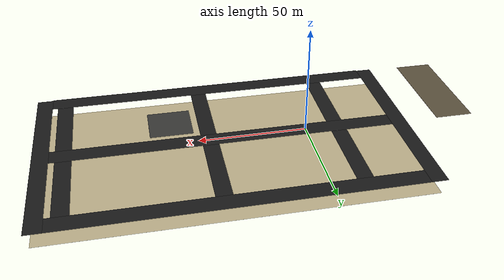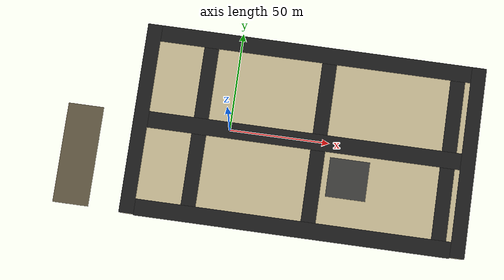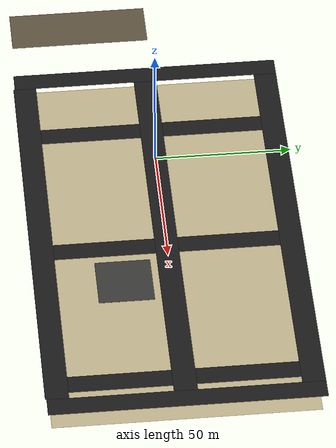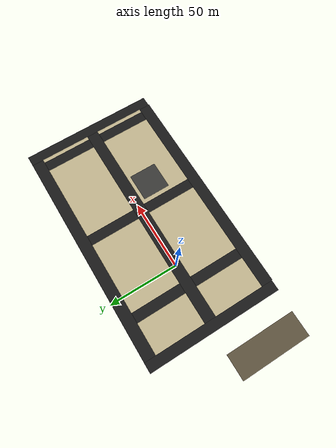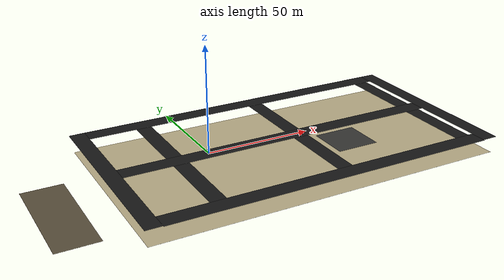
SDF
<sdf version="1.6">
 <world name="default">
  <scene>
   <grid>false</grid>
   <origin_visual>false</origin_visual>
   <ambient>0.85 0.85 0.85 1</ambient>
   <sky><clouds><speed>12</speed></clouds></sky>
   <background>0.35 0.35 0.35 1.0</background>
  </scene>
  <physics name="1ms" type="ignored">
   <max_step_size>0.001</max_step_size>
   <real_time_factor>1</real_time_factor>
   <real_time_update_rate>1000</real_time_update_rate>
  </physics>
  <gravity>0 0 -9.8</gravity>
  <magnetic_field>5.5645e-06 2.28758e-05 -4.23884e-05</magnetic_field>
  <atmosphere type="adiabatic"/>
  <plugin name="gz::sim::systems::Physics" filename="gz-sim-physics-system"/>
  <plugin name="gz::sim::systems::UserCommands" filename="gz-sim-user-commands-system"/>
  <plugin name="gz::sim::systems::SceneBroadcaster" filename="gz-sim-scene-broadcaster-system"/>
  <plugin name="gz::sim::systems::Contact" filename="gz-sim-contact-system"/>
  <plugin name="gz::sim::systems::Sensors" filename="gz-sim-sensors-system">
   <render_engine>ogre2</render_engine>
  </plugin>
  <plugin name="go2_simulation::ActorPosePublisher" filename="ActorPosePublisher">
   <topic>/world/default/actor_pose/info</topic>
   <update_rate>50</update_rate>
   <frame_id>world</frame_id>
   <model_name>go2</model_name>
  </plugin>
  <light type="directional" name="sun">
   <pose>0 0 1000 0 0 0</pose>
   <diffuse>0.8 0.8 0.8 1</diffuse>
   <specular>0.5 0.5 0.5 1</specular>
   <attenuation>
    <range>1000</range>
    <constant>0.9</constant>
    <linear>0.01</linear>
    <quadratic>0.001</quadratic>
   </attenuation>
   <direction>-0.5 0.1 -0.4</direction>
  </light>
  <model name="ground_plane">
   <static>true</static>
   <link name="link">
    <collision name="collision">
     <geometry><plane><normal>0 0 1</normal><size>100 100</size></plane></geometry>
    </collision>
    <pose>0 0 -1 0 0 0</pose>
   </link>
  </model>
  <model name="city_base_plane">
   <static>true</static>
   <pose>37.5 0 -8 0 0 0</pose>
   <link name="link">
    <visual name="visual">
     <cast_shadows>false</cast_shadows>
     <geometry><box><size>170 95 0.01</size></box></geometry>
     <material>
      <ambient>0.75 0.70 0.55 1</ambient>
      <diffuse>0.75 0.70 0.55 1</diffuse>
      <specular>0.05 0.05 0.05 1</specular>
     </material>
    </visual>
    <collision name="collision">
     <geometry><box><size>170 95 0.01</size></box></geometry>
     <surface><friction><ode><mu>0.8</mu><mu2>0.8</mu2></ode></friction></surface>
    </collision>
   </link>
  </model>
  <model name="road_y_1">
   <static>true</static>
   <pose>-45 0.25 0.01 0 0 1.570796</pose>
   <link name="link">
    <collision name="collision">
     <geometry><box><size>97.9 7.4 0.02</size></box></geometry>
     <surface><friction><ode><mu>1.0</mu><mu2>1.0</mu2></ode></friction></surface>
    </collision>
    <visual name="visual">
     <cast_shadows>false</cast_shadows>
     <geometry><box><size>97.9 7.4 0.02</size></box></geometry>
     <material>
      <ambient>0.10 0.10 0.10 1</ambient>
      <diffuse>0.10 0.10 0.10 1</diffuse>
      <specular>0.02 0.02 0.02 1</specular>
     </material>
    </visual>
   </link>
  </model>
  <model name="road_y_2">
   <static>true</static>
   <pose>-15 0.25 0.01 0 0 1.570796</pose>
   <link name="link">
    <collision name="collision">
     <geometry><box><size>97.9 7.4 0.02</size></box></geometry>
     <surface><friction><ode><mu>1.0</mu><mu2>1.0</mu2></ode></friction></surface>
    </collision>
    <visual name="visual">
     <cast_shadows>false</cast_shadows>
     <geometry><box><size>97.9 7.4 0.02</size></box></geometry>
     <material>
      <ambient>0.10 0.10 0.10 1</ambient>
      <diffuse>0.10 0.10 0.10 1</diffuse>
      <specular>0.02 0.02 0.02 1</specular>
     </material>
    </visual>
   </link>
  </model>
  <model name="road_y_3">
   <static>true</static>
   <pose>45 0.25 0.01 0 0 1.570796</pose>
   <link name="link">
    <collision name="collision">
     <geometry><box><size>97.9 7.4 0.02</size></box></geometry>
     <surface><friction><ode><mu>1.0</mu><mu2>1.0</mu2></ode></friction></surface>
    </collision>
    <visual name="visual">
     <cast_shadows>false</cast_shadows>
     <geometry><box><size>97.9 7.4 0.02</size></box></geometry>
     <material>
      <ambient>0.10 0.10 0.10 1</ambient>
      <diffuse>0.10 0.10 0.10 1</diffuse>
      <specular>0.02 0.02 0.02 1</specular>
     </material>
    </visual>
   </link>
  </model>
  <model name="road_y_4">
   <static>true</static>
   <pose>110 0.25 0.01 0 0 1.570796</pose>
   <link name="link">
    <collision name="collision">
     <geometry><box><size>97.9 7.4 0.02</size></box></geometry>
     <surface><friction><ode><mu>1.0</mu><mu2>1.0</mu2></ode></friction></surface>
    </collision>
    <visual name="visual">
     <cast_shadows>false</cast_shadows>
     <geometry><box><size>97.9 7.4 0.02</size></box></geometry>
     <material>
      <ambient>0.10 0.10 0.10 1</ambient>
      <diffuse>0.10 0.10 0.10 1</diffuse>
      <specular>0.02 0.02 0.02 1</specular>
     </material>
    </visual>
   </link>
  </model>
  <model name="road_y_5">
   <static>true</static>
   <pose>120 0.25 0.01 0 0 1.570796</pose>
   <link name="link">
    <collision name="collision">
     <geometry><box><size>97.9 7.4 0.02</size></box></geometry>
     <surface><friction><ode><mu>1.0</mu><mu2>1.0</mu2></ode></friction></surface>
    </collision>
    <visual name="visual">
     <cast_shadows>false</cast_shadows>
     <geometry><box><size>97.9 7.4 0.02</size></box></geometry>
     <material>
      <ambient>0.10 0.10 0.10 1</ambient>
      <diffuse>0.10 0.10 0.10 1</diffuse>
      <specular>0.02 0.02 0.02 1</specular>
     </material>
    </visual>
   </link>
  </model>
  <model name="road_x_1">
   <static>true</static>
   <pose>37.5 -45 0.015 0 0 0</pose>
   <link name="link">
    <collision name="collision">
     <geometry><box><size>157.6 8.4 0.02</size></box></geometry>
     <surface><friction><ode><mu>1.0</mu><mu2>1.0</mu2></ode></friction></surface>
    </collision>
    <visual name="visual">
     <cast_shadows>false</cast_shadows>
     <geometry><box><size>157.6 8.4 0.02</size></box></geometry>
     <material>
      <ambient>0.10 0.10 0.10 1</ambient>
      <diffuse>0.10 0.10 0.10 1</diffuse>
      <specular>0.02 0.02 0.02 1</specular>
     </material>
    </visual>
   </link>
  </model>
  <model name="road_x_2">
   <static>true</static>
   <pose>37.5 0 0.015 0 0 0</pose>
   <link name="link">
    <collision name="collision">
     <geometry><box><size>157.6 8.4 0.02</size></box></geometry>
     <surface><friction><ode><mu>1.0</mu><mu2>1.0</mu2></ode></friction></surface>
    </collision>
    <visual name="visual">
     <cast_shadows>false</cast_shadows>
     <geometry><box><size>157.6 8.4 0.02</size></box></geometry>
     <material>
      <ambient>0.10 0.10 0.10 1</ambient>
      <diffuse>0.10 0.10 0.10 1</diffuse>
      <specular>0.02 0.02 0.02 1</specular>
     </material>
    </visual>
   </link>
  </model>
  <model name="road_x_3">
   <static>true</static>
   <pose>37.5 45 0.015 0 0 0</pose>
   <link name="link">
    <collision name="collision">
     <geometry><box><size>157.6 8.4 0.02</size></box></geometry>
     <surface><friction><ode><mu>1.0</mu><mu2>1.0</mu2></ode></friction></surface>
    </collision>
    <visual name="visual">
     <cast_shadows>false</cast_shadows>
     <geometry><box><size>157.6 8.4 0.02</size></box></geometry>
     <material>
      <ambient>0.10 0.10 0.10 1</ambient>
      <diffuse>0.10 0.10 0.10 1</diffuse>
      <specular>0.02 0.02 0.02 1</specular>
     </material>
    </visual>
   </link>
  </model>
  <model name="sidewalk_16_raised_collision_test">
   <static>true</static>
   <pose>15.000000 5.200000 0.160000 0 0 0</pose>
   <link name="link">
    <collision name="collision">
     <geometry><box><size>52.600000 3.000000 0.01</size></box></geometry>
     <surface><friction><ode><mu>0.8</mu><mu2>0.8</mu2></ode></friction></surface>
    </collision>
   </link>
  </model>
  <model name="asphalt_plane_74">
   <static>true</static>
   <pose>61.581
    -16.664
    0
    0
    0
    0</pose>
   <link name="link">
    <visual name="visual">
     <geometry><box><size>20
            20
            0.05</size></box></geometry>
     <material>
      <ambient>0.22 0.22 0.21 1</ambient>
      <diffuse>0.22 0.22 0.21 1</diffuse>
      <specular>0.04 0.04 0.04 1</specular>
     </material>
    </visual>
   </link>
  </model>
  <model name="sandy_path">
   <static>true</static>
   <pose>-73 -22.5 0.01 0 0 1.570796</pose>
   <link name="link">
    <collision name="collision">
     <geometry><box><size>50.92 17.9 0.02</size></box></geometry>
     <surface><friction><ode><mu>1.0</mu><mu2>1.0</mu2></ode></friction></surface>
    </collision>
    <visual name="visual">
     <cast_shadows>false</cast_shadows>
     <geometry><box><size>50.92 17.9 0.02</size></box></geometry>
     <material>
      <ambient>0.36 0.32 0.24 1</ambient>
      <diffuse>0.36 0.32 0.24 1</diffuse>
      <specular>0.03 0.03 0.025 1</specular>
     </material>
    </visual>
   </link>
  </model>
 </world>
</sdf>
